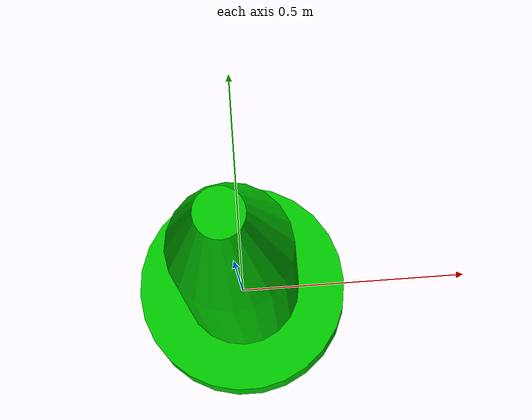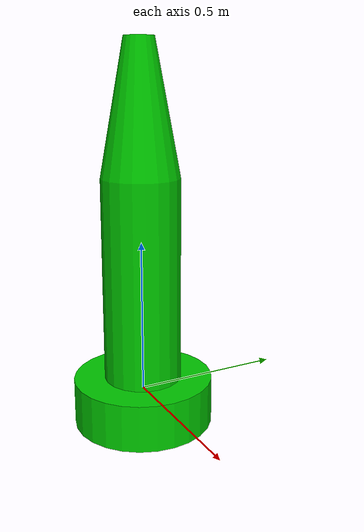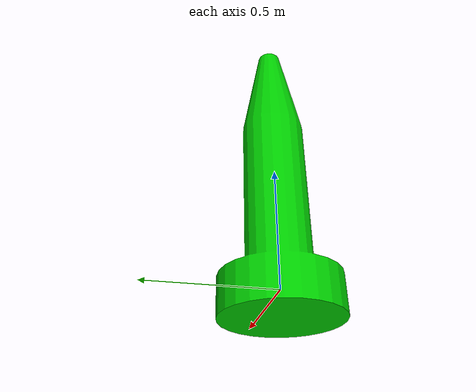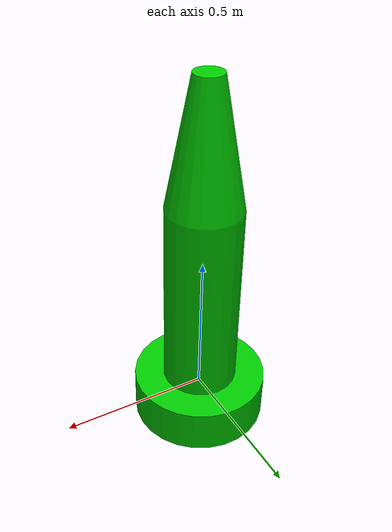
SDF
<?xml version="1.0"?>
<sdf version="1.5">
  <model name="green_marker_nun">
    <static>true</static>
    <pose>0 0 -0.1223 0 0 0</pose>
    <link name="base_link">
      <visual name="visual">
        <geometry>
           <mesh>
            <uri>file://markers/green_marker_nun.dae</uri>
          </mesh>
        </geometry>
      </visual>
      <collision name="collision">
        <geometry>
           <mesh>
            <uri>file://markers/green_marker_nun.dae</uri>
          </mesh>
        </geometry>
      </collision>
    </link>
  </model>
</sdf>
